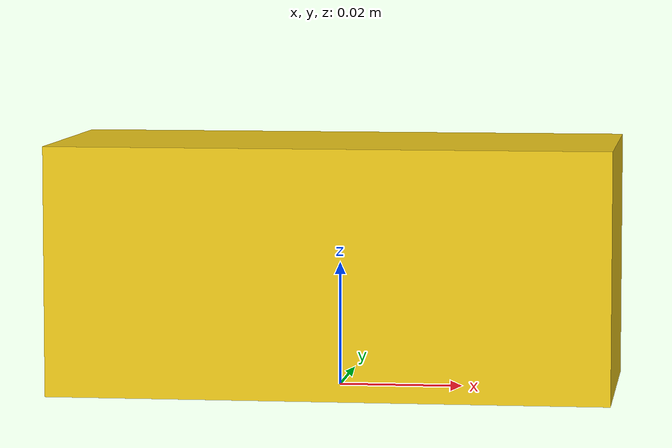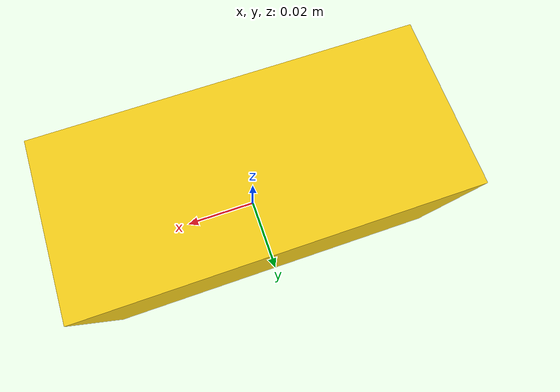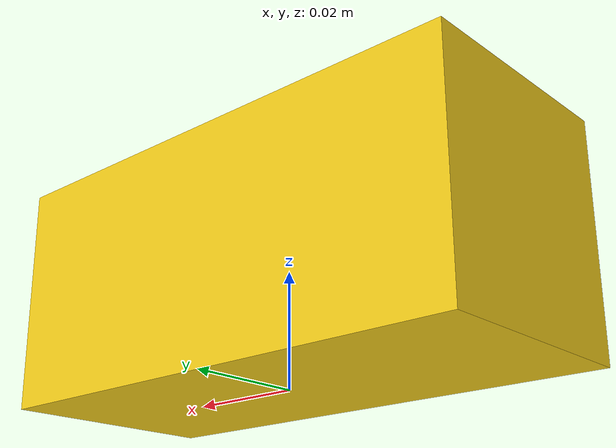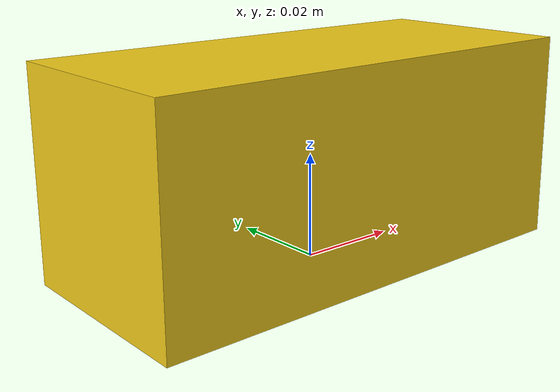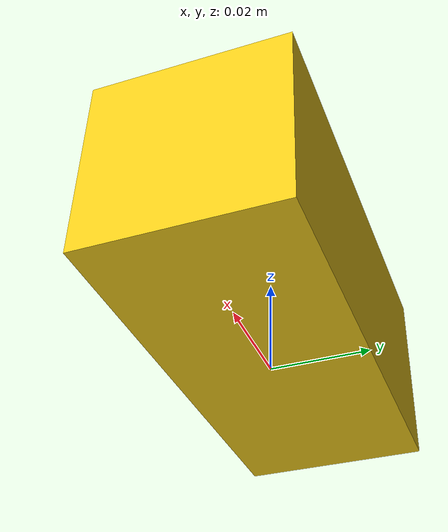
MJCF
<mujoco model="yellow_bar">
  <worldbody>
    <body>
      <body name="object">
        <geom solimp="0.998 0.998 0.001" solref="0.001 1" friction="1.0 0.3 0.1" density="400" type="box" pos="0 0 0.0200" size="0.0450 0.0200 0.0200" rgba="0.950 0.800 0.100 1.000" group="0"/>
        <geom type="box" pos="0 0 0.0200" size="0.0450 0.0200 0.0200" rgba="0.950 0.800 0.100 1.000" conaffinity="0" contype="0" group="1"/>
      </body>
      <site rgba="0 0 0 0" size="0.005" pos="0 0 0" name="bottom_site" />
      <site rgba="0 0 0 0" size="0.005" pos="0 0 0.0400" name="top_site" />
      <site rgba="0 0 0 0" size="0.005" pos="0.0348 0.0348 0" name="horizontal_radius_site" />
    </body>
  </worldbody>
</mujoco>
